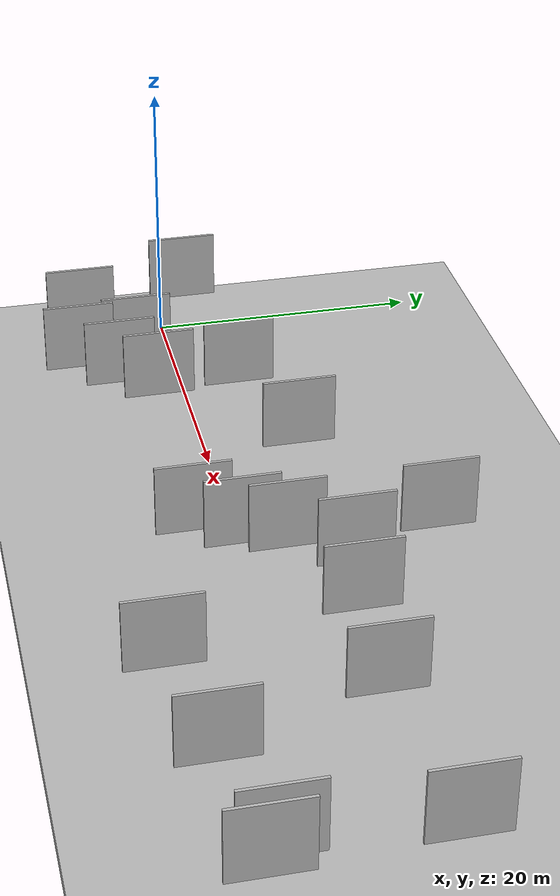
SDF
<?xml version="1.0" encoding="utf-8"?>

<sdf version="1.6">

   <world name="default">

      <gui fullscreen="0">

         <camera name="user_camera">

            <pose>-15 0 4.57585 0 0 0</pose>

            <view_controller>orbit</view_controller>

         </camera>

      </gui>

      <scene>

         <sky>

           <clouds>

             <speed>12</speed>

           </clouds>

         </sky>

         <ambient>0.4 0.4 0.4 1</ambient>

         <background>0.7 0.7 0.7 1</background>

         <shadows>1</shadows>

      </scene>

      <gravity>0 0 -9.8066</gravity>

      <magnetic_field>6e-06 2.3e-05 -4.2e-05</magnetic_field>

      <physics default="0" name="default_physics" type="ode">

         <ode>

            <solver>

               <type>quick</type>

               <iters>10</iters>

               <sor>1.0</sor>

               <use_dynamic_moi_rescaling>0</use_dynamic_moi_rescaling>

            </solver>

            <constraints>

               <cfm>0</cfm>

               <erp>0.2</erp>

               <contact_max_correcting_vel>100</contact_max_correcting_vel>

               <contact_surface_layer>0.001</contact_surface_layer>

            </constraints>

         </ode>

         <max_step_size>0.004</max_step_size>

         <real_time_factor>1</real_time_factor>

         <real_time_update_rate>250</real_time_update_rate>

      </physics>

      <light name="sun" type="directional">

         <cast_shadows>1</cast_shadows>

         <pose>0 0 10 0 0 0</pose>

         <diffuse>0.8 0.8 0.8 1</diffuse>

         <specular>0.2 0.2 0.2 1</specular>

         <attenuation>

            <range>1000</range>

            <constant>0.9</constant>

            <linear>0.01</linear>

            <quadratic>0.001</quadratic>

         </attenuation>

         <direction>-0.5 0.1 -0.9</direction>

      </light>

      <include>

         <name>ground_plane_1</name>

         <uri>model://HANNAS_ground_plane</uri>

         <pose>0 0 0  0 0 0</pose>

      </include>

      <include>

         <name>ground_plane_2</name>

         <uri>model://HANNAS_ground_plane</uri>

         <pose>100 0 0  0 0 0</pose>

      </include>

      <model name="HANNAS_wall_1">

         <static>1</static>

         <pose frame="">45.1255 4.6349 5.0 0.000000 0.000000 1.570796</pose>

         <link name="link">

            <pose frame="">0 0 2.50 0 0 0</pose>

            <collision name="collision">

               <geometry>

                  <box>

                     <size>5.00 0.2 5.00</size>

                  </box>

               </geometry>

               <max_contacts>10</max_contacts>

               <surface>

                  <contact>

                     <ode/>

                  </contact>

                  <bounce/>

                  <friction>

                     <torsional>

                        <ode/>

                     </torsional>

                     <ode/>

                  </friction>

               </surface>

            </collision>

            <visual name="visual">

               <cast_shadows>0</cast_shadows>

               <geometry>

                  <box>

                     <size>5.00 0.2 5.00</size>

                  </box>

               </geometry>

               <material>

                  <script>

                     <uri>model://HANNAS_wall/materials/scripts</uri>

                     <uri>model://HANNAS_wall/materials/textures</uri>

                     <name>vrc/HANNAS_wall</name>

                  </script>

               </material>

            </visual>

            <self_collide>0</self_collide>

            <enable_wind>0</enable_wind>

            <kinematic>0</kinematic>

         </link>

      </model>

      <model name="HANNAS_wall_2">

         <static>1</static>

         <pose frame="">26.2473 5.0978 5.0 0.000000 0.000000 1.570796</pose>

         <link name="link">

            <pose frame="">0 0 2.50 0 0 0</pose>

            <collision name="collision">

               <geometry>

                  <box>

                     <size>5.00 0.2 5.00</size>

                  </box>

               </geometry>

               <max_contacts>10</max_contacts>

               <surface>

                  <contact>

                     <ode/>

                  </contact>

                  <bounce/>

                  <friction>

                     <torsional>

                        <ode/>

                     </torsional>

                     <ode/>

                  </friction>

               </surface>

            </collision>

            <visual name="visual">

               <cast_shadows>0</cast_shadows>

               <geometry>

                  <box>

                     <size>5.00 0.2 5.00</size>

                  </box>

               </geometry>

               <material>

                  <script>

                     <uri>model://HANNAS_wall/materials/scripts</uri>

                     <uri>model://HANNAS_wall/materials/textures</uri>

                     <name>vrc/HANNAS_wall</name>

                  </script>

               </material>

            </visual>

            <self_collide>0</self_collide>

            <enable_wind>0</enable_wind>

            <kinematic>0</kinematic>

         </link>

      </model>

      <model name="HANNAS_wall_3">

         <static>1</static>

         <pose frame="">17.4704 2.7436 5.0 0.000000 0.000000 1.570796</pose>

         <link name="link">

            <pose frame="">0 0 2.50 0 0 0</pose>

            <collision name="collision">

               <geometry>

                  <box>

                     <size>5.00 0.2 5.00</size>

                  </box>

               </geometry>

               <max_contacts>10</max_contacts>

               <surface>

                  <contact>

                     <ode/>

                  </contact>

                  <bounce/>

                  <friction>

                     <torsional>

                        <ode/>

                     </torsional>

                     <ode/>

                  </friction>

               </surface>

            </collision>

            <visual name="visual">

               <cast_shadows>0</cast_shadows>

               <geometry>

                  <box>

                     <size>5.00 0.2 5.00</size>

                  </box>

               </geometry>

               <material>

                  <script>

                     <uri>model://HANNAS_wall/materials/scripts</uri>

                     <uri>model://HANNAS_wall/materials/textures</uri>

                     <name>vrc/HANNAS_wall</name>

                  </script>

               </material>

            </visual>

            <self_collide>0</self_collide>

            <enable_wind>0</enable_wind>

            <kinematic>0</kinematic>

         </link>

      </model>

      <model name="HANNAS_wall_4">

         <static>1</static>

         <pose frame="">34.8560 -3.8197 5.0 0.000000 0.000000 1.570796</pose>

         <link name="link">

            <pose frame="">0 0 2.50 0 0 0</pose>

            <collision name="collision">

               <geometry>

                  <box>

                     <size>5.00 0.2 5.00</size>

                  </box>

               </geometry>

               <max_contacts>10</max_contacts>

               <surface>

                  <contact>

                     <ode/>

                  </contact>

                  <bounce/>

                  <friction>

                     <torsional>

                        <ode/>

                     </torsional>

                     <ode/>

                  </friction>

               </surface>

            </collision>

            <visual name="visual">

               <cast_shadows>0</cast_shadows>

               <geometry>

                  <box>

                     <size>5.00 0.2 5.00</size>

                  </box>

               </geometry>

               <material>

                  <script>

                     <uri>model://HANNAS_wall/materials/scripts</uri>

                     <uri>model://HANNAS_wall/materials/textures</uri>

                     <name>vrc/HANNAS_wall</name>

                  </script>

               </material>

            </visual>

            <self_collide>0</self_collide>

            <enable_wind>0</enable_wind>

            <kinematic>0</kinematic>

         </link>

      </model>

      <model name="HANNAS_wall_5">

         <static>1</static>

         <pose frame="">52.9062 4.0722 5.0 0.000000 0.000000 1.570796</pose>

         <link name="link">

            <pose frame="">0 0 2.50 0 0 0</pose>

            <collision name="collision">

               <geometry>

                  <box>

                     <size>5.00 0.2 5.00</size>

                  </box>

               </geometry>

               <max_contacts>10</max_contacts>

               <surface>

                  <contact>

                     <ode/>

                  </contact>

                  <bounce/>

                  <friction>

                     <torsional>

                        <ode/>

                     </torsional>

                     <ode/>

                  </friction>

               </surface>

            </collision>

            <visual name="visual">

               <cast_shadows>0</cast_shadows>

               <geometry>

                  <box>

                     <size>5.00 0.2 5.00</size>

                  </box>

               </geometry>

               <material>

                  <script>

                     <uri>model://HANNAS_wall/materials/scripts</uri>

                     <uri>model://HANNAS_wall/materials/textures</uri>

                     <name>vrc/HANNAS_wall</name>

                  </script>

               </material>

            </visual>

            <self_collide>0</self_collide>

            <enable_wind>0</enable_wind>

            <kinematic>0</kinematic>

         </link>

      </model>

      <model name="HANNAS_wall_6">

         <static>1</static>

         <pose frame="">40.3292 5.4675 5.0 0.000000 0.000000 1.570796</pose>

         <link name="link">

            <pose frame="">0 0 2.50 0 0 0</pose>

            <collision name="collision">

               <geometry>

                  <box>

                     <size>5.00 0.2 5.00</size>

                  </box>

               </geometry>

               <max_contacts>10</max_contacts>

               <surface>

                  <contact>

                     <ode/>

                  </contact>

                  <bounce/>

                  <friction>

                     <torsional>

                        <ode/>

                     </torsional>

                     <ode/>

                  </friction>

               </surface>

            </collision>

            <visual name="visual">

               <cast_shadows>0</cast_shadows>

               <geometry>

                  <box>

                     <size>5.00 0.2 5.00</size>

                  </box>

               </geometry>

               <material>

                  <script>

                     <uri>model://HANNAS_wall/materials/scripts</uri>

                     <uri>model://HANNAS_wall/materials/textures</uri>

                     <name>vrc/HANNAS_wall</name>

                  </script>

               </material>

            </visual>

            <self_collide>0</self_collide>

            <enable_wind>0</enable_wind>

            <kinematic>0</kinematic>

         </link>

      </model>

      <model name="HANNAS_wall_7">

         <static>1</static>

         <pose frame="">65.6613 -5.6756 5.0 0.000000 0.000000 1.570796</pose>

         <link name="link">

            <pose frame="">0 0 2.50 0 0 0</pose>

            <collision name="collision">

               <geometry>

                  <box>

                     <size>5.00 0.2 5.00</size>

                  </box>

               </geometry>

               <max_contacts>10</max_contacts>

               <surface>

                  <contact>

                     <ode/>

                  </contact>

                  <bounce/>

                  <friction>

                     <torsional>

                        <ode/>

                     </torsional>

                     <ode/>

                  </friction>

               </surface>

            </collision>

            <visual name="visual">

               <cast_shadows>0</cast_shadows>

               <geometry>

                  <box>

                     <size>5.00 0.2 5.00</size>

                  </box>

               </geometry>

               <material>

                  <script>

                     <uri>model://HANNAS_wall/materials/scripts</uri>

                     <uri>model://HANNAS_wall/materials/textures</uri>

                     <name>vrc/HANNAS_wall</name>

                  </script>

               </material>

            </visual>

            <self_collide>0</self_collide>

            <enable_wind>0</enable_wind>

            <kinematic>0</kinematic>

         </link>

      </model>

      <model name="HANNAS_wall_8">

         <static>1</static>

         <pose frame="">15.6821 -5.5111 5.0 0.000000 0.000000 1.570796</pose>

         <link name="link">

            <pose frame="">0 0 2.50 0 0 0</pose>

            <collision name="collision">

               <geometry>

                  <box>

                     <size>5.00 0.2 5.00</size>

                  </box>

               </geometry>

               <max_contacts>10</max_contacts>

               <surface>

                  <contact>

                     <ode/>

                  </contact>

                  <bounce/>

                  <friction>

                     <torsional>

                        <ode/>

                     </torsional>

                     <ode/>

                  </friction>

               </surface>

            </collision>

            <visual name="visual">

               <cast_shadows>0</cast_shadows>

               <geometry>

                  <box>

                     <size>5.00 0.2 5.00</size>

                  </box>

               </geometry>

               <material>

                  <script>

                     <uri>model://HANNAS_wall/materials/scripts</uri>

                     <uri>model://HANNAS_wall/materials/textures</uri>

                     <name>vrc/HANNAS_wall</name>

                  </script>

               </material>

            </visual>

            <self_collide>0</self_collide>

            <enable_wind>0</enable_wind>

            <kinematic>0</kinematic>

         </link>

      </model>

      <model name="HANNAS_wall_9">

         <static>1</static>

         <pose frame="">12.9343 -8.0553 5.0 0.000000 0.000000 1.570796</pose>

         <link name="link">

            <pose frame="">0 0 2.50 0 0 0</pose>

            <collision name="collision">

               <geometry>

                  <box>

                     <size>5.00 0.2 5.00</size>

                  </box>

               </geometry>

               <max_contacts>10</max_contacts>

               <surface>

                  <contact>

                     <ode/>

                  </contact>

                  <bounce/>

                  <friction>

                     <torsional>

                        <ode/>

                     </torsional>

                     <ode/>

                  </friction>

               </surface>

            </collision>

            <visual name="visual">

               <cast_shadows>0</cast_shadows>

               <geometry>

                  <box>

                     <size>5.00 0.2 5.00</size>

                  </box>

               </geometry>

               <material>

                  <script>

                     <uri>model://HANNAS_wall/materials/scripts</uri>

                     <uri>model://HANNAS_wall/materials/textures</uri>

                     <name>vrc/HANNAS_wall</name>

                  </script>

               </material>

            </visual>

            <self_collide>0</self_collide>

            <enable_wind>0</enable_wind>

            <kinematic>0</kinematic>

         </link>

      </model>

      <model name="HANNAS_wall_10">

         <static>1</static>

         <pose frame="">56.5571 -6.5702 5.0 0.000000 0.000000 1.570796</pose>

         <link name="link">

            <pose frame="">0 0 2.50 0 0 0</pose>

            <collision name="collision">

               <geometry>

                  <box>

                     <size>5.00 0.2 5.00</size>

                  </box>

               </geometry>

               <max_contacts>10</max_contacts>

               <surface>

                  <contact>

                     <ode/>

                  </contact>

                  <bounce/>

                  <friction>

                     <torsional>

                        <ode/>

                     </torsional>

                     <ode/>

                  </friction>

               </surface>

            </collision>

            <visual name="visual">

               <cast_shadows>0</cast_shadows>

               <geometry>

                  <box>

                     <size>5.00 0.2 5.00</size>

                  </box>

               </geometry>

               <material>

                  <script>

                     <uri>model://HANNAS_wall/materials/scripts</uri>

                     <uri>model://HANNAS_wall/materials/textures</uri>

                     <name>vrc/HANNAS_wall</name>

                  </script>

               </material>

            </visual>

            <self_collide>0</self_collide>

            <enable_wind>0</enable_wind>

            <kinematic>0</kinematic>

         </link>

      </model>

      <model name="HANNAS_wall_11">

         <static>1</static>

         <pose frame="">7.4788 -7.1962 5.0 0.000000 0.000000 1.570796</pose>

         <link name="link">

            <pose frame="">0 0 2.50 0 0 0</pose>

            <collision name="collision">

               <geometry>

                  <box>

                     <size>5.00 0.2 5.00</size>

                  </box>

               </geometry>

               <max_contacts>10</max_contacts>

               <surface>

                  <contact>

                     <ode/>

                  </contact>

                  <bounce/>

                  <friction>

                     <torsional>

                        <ode/>

                     </torsional>

                     <ode/>

                  </friction>

               </surface>

            </collision>

            <visual name="visual">

               <cast_shadows>0</cast_shadows>

               <geometry>

                  <box>

                     <size>5.00 0.2 5.00</size>

                  </box>

               </geometry>

               <material>

                  <script>

                     <uri>model://HANNAS_wall/materials/scripts</uri>

                     <uri>model://HANNAS_wall/materials/textures</uri>

                     <name>vrc/HANNAS_wall</name>

                  </script>

               </material>

            </visual>

            <self_collide>0</self_collide>

            <enable_wind>0</enable_wind>

            <kinematic>0</kinematic>

         </link>

      </model>

      <model name="HANNAS_wall_12">

         <static>1</static>

         <pose frame="">64.4495 -4.7952 5.0 0.000000 0.000000 1.570796</pose>

         <link name="link">

            <pose frame="">0 0 2.50 0 0 0</pose>

            <collision name="collision">

               <geometry>

                  <box>

                     <size>5.00 0.2 5.00</size>

                  </box>

               </geometry>

               <max_contacts>10</max_contacts>

               <surface>

                  <contact>

                     <ode/>

                  </contact>

                  <bounce/>

                  <friction>

                     <torsional>

                        <ode/>

                     </torsional>

                     <ode/>

                  </friction>

               </surface>

            </collision>

            <visual name="visual">

               <cast_shadows>0</cast_shadows>

               <geometry>

                  <box>

                     <size>5.00 0.2 5.00</size>

                  </box>

               </geometry>

               <material>

                  <script>

                     <uri>model://HANNAS_wall/materials/scripts</uri>

                     <uri>model://HANNAS_wall/materials/textures</uri>

                     <name>vrc/HANNAS_wall</name>

                  </script>

               </material>

            </visual>

            <self_collide>0</self_collide>

            <enable_wind>0</enable_wind>

            <kinematic>0</kinematic>

         </link>

      </model>

      <model name="HANNAS_wall_13">

         <static>1</static>

         <pose frame="">37.8097 11.5834 5.0 0.000000 0.000000 1.570796</pose>

         <link name="link">

            <pose frame="">0 0 2.50 0 0 0</pose>

            <collision name="collision">

               <geometry>

                  <box>

                     <size>5.00 0.2 5.00</size>

                  </box>

               </geometry>

               <max_contacts>10</max_contacts>

               <surface>

                  <contact>

                     <ode/>

                  </contact>

                  <bounce/>

                  <friction>

                     <torsional>

                        <ode/>

                     </torsional>

                     <ode/>

                  </friction>

               </surface>

            </collision>

            <visual name="visual">

               <cast_shadows>0</cast_shadows>

               <geometry>

                  <box>

                     <size>5.00 0.2 5.00</size>

                  </box>

               </geometry>

               <material>

                  <script>

                     <uri>model://HANNAS_wall/materials/scripts</uri>

                     <uri>model://HANNAS_wall/materials/textures</uri>

                     <name>vrc/HANNAS_wall</name>

                  </script>

               </material>

            </visual>

            <self_collide>0</self_collide>

            <enable_wind>0</enable_wind>

            <kinematic>0</kinematic>

         </link>

      </model>

      <model name="HANNAS_wall_14">

         <static>1</static>

         <pose frame="">37.9137 1.6221 5.0 0.000000 0.000000 1.570796</pose>

         <link name="link">

            <pose frame="">0 0 2.50 0 0 0</pose>

            <collision name="collision">

               <geometry>

                  <box>

                     <size>5.00 0.2 5.00</size>

                  </box>

               </geometry>

               <max_contacts>10</max_contacts>

               <surface>

                  <contact>

                     <ode/>

                  </contact>

                  <bounce/>

                  <friction>

                     <torsional>

                        <ode/>

                     </torsional>

                     <ode/>

                  </friction>

               </surface>

            </collision>

            <visual name="visual">

               <cast_shadows>0</cast_shadows>

               <geometry>

                  <box>

                     <size>5.00 0.2 5.00</size>

                  </box>

               </geometry>

               <material>

                  <script>

                     <uri>model://HANNAS_wall/materials/scripts</uri>

                     <uri>model://HANNAS_wall/materials/textures</uri>

                     <name>vrc/HANNAS_wall</name>

                  </script>

               </material>

            </visual>

            <self_collide>0</self_collide>

            <enable_wind>0</enable_wind>

            <kinematic>0</kinematic>

         </link>

      </model>

      <model name="HANNAS_wall_15">

         <static>1</static>

         <pose frame="">17.9428 -3.1046 5.0 0.000000 0.000000 1.570796</pose>

         <link name="link">

            <pose frame="">0 0 2.50 0 0 0</pose>

            <collision name="collision">

               <geometry>

                  <box>

                     <size>5.00 0.2 5.00</size>

                  </box>

               </geometry>

               <max_contacts>10</max_contacts>

               <surface>

                  <contact>

                     <ode/>

                  </contact>

                  <bounce/>

                  <friction>

                     <torsional>

                        <ode/>

                     </torsional>

                     <ode/>

                  </friction>

               </surface>

            </collision>

            <visual name="visual">

               <cast_shadows>0</cast_shadows>

               <geometry>

                  <box>

                     <size>5.00 0.2 5.00</size>

                  </box>

               </geometry>

               <material>

                  <script>

                     <uri>model://HANNAS_wall/materials/scripts</uri>

                     <uri>model://HANNAS_wall/materials/textures</uri>

                     <name>vrc/HANNAS_wall</name>

                  </script>

               </material>

            </visual>

            <self_collide>0</self_collide>

            <enable_wind>0</enable_wind>

            <kinematic>0</kinematic>

         </link>

      </model>

      <model name="HANNAS_wall_16">

         <static>1</static>

         <pose frame="">36.8913 -1.0545 5.0 0.000000 0.000000 1.570796</pose>

         <link name="link">

            <pose frame="">0 0 2.50 0 0 0</pose>

            <collision name="collision">

               <geometry>

                  <box>

                     <size>5.00 0.2 5.00</size>

                  </box>

               </geometry>

               <max_contacts>10</max_contacts>

               <surface>

                  <contact>

                     <ode/>

                  </contact>

                  <bounce/>

                  <friction>

                     <torsional>

                        <ode/>

                     </torsional>

                     <ode/>

                  </friction>

               </surface>

            </collision>

            <visual name="visual">

               <cast_shadows>0</cast_shadows>

               <geometry>

                  <box>

                     <size>5.00 0.2 5.00</size>

                  </box>

               </geometry>

               <material>

                  <script>

                     <uri>model://HANNAS_wall/materials/scripts</uri>

                     <uri>model://HANNAS_wall/materials/textures</uri>

                     <name>vrc/HANNAS_wall</name>

                  </script>

               </material>

            </visual>

            <self_collide>0</self_collide>

            <enable_wind>0</enable_wind>

            <kinematic>0</kinematic>

         </link>

      </model>

      <model name="HANNAS_wall_17">

         <static>1</static>

         <pose frame="">65.1112 5.1265 5.0 0.000000 0.000000 1.570796</pose>

         <link name="link">

            <pose frame="">0 0 2.50 0 0 0</pose>

            <collision name="collision">

               <geometry>

                  <box>

                     <size>5.00 0.2 5.00</size>

                  </box>

               </geometry>

               <max_contacts>10</max_contacts>

               <surface>

                  <contact>

                     <ode/>

                  </contact>

                  <bounce/>

                  <friction>

                     <torsional>

                        <ode/>

                     </torsional>

                     <ode/>

                  </friction>

               </surface>

            </collision>

            <visual name="visual">

               <cast_shadows>0</cast_shadows>

               <geometry>

                  <box>

                     <size>5.00 0.2 5.00</size>

                  </box>

               </geometry>

               <material>

                  <script>

                     <uri>model://HANNAS_wall/materials/scripts</uri>

                     <uri>model://HANNAS_wall/materials/textures</uri>

                     <name>vrc/HANNAS_wall</name>

                  </script>

               </material>

            </visual>

            <self_collide>0</self_collide>

            <enable_wind>0</enable_wind>

            <kinematic>0</kinematic>

         </link>

      </model>

      <model name="HANNAS_wall_18">

         <static>1</static>

         <pose frame="">47.9540 -8.0526 5.0 0.000000 0.000000 1.570796</pose>

         <link name="link">

            <pose frame="">0 0 2.50 0 0 0</pose>

            <collision name="collision">

               <geometry>

                  <box>

                     <size>5.00 0.2 5.00</size>

                  </box>

               </geometry>

               <max_contacts>10</max_contacts>

               <surface>

                  <contact>

                     <ode/>

                  </contact>

                  <bounce/>

                  <friction>

                     <torsional>

                        <ode/>

                     </torsional>

                     <ode/>

                  </friction>

               </surface>

            </collision>

            <visual name="visual">

               <cast_shadows>0</cast_shadows>

               <geometry>

                  <box>

                     <size>5.00 0.2 5.00</size>

                  </box>

               </geometry>

               <material>

                  <script>

                     <uri>model://HANNAS_wall/materials/scripts</uri>

                     <uri>model://HANNAS_wall/materials/textures</uri>

                     <name>vrc/HANNAS_wall</name>

                  </script>

               </material>

            </visual>

            <self_collide>0</self_collide>

            <enable_wind>0</enable_wind>

            <kinematic>0</kinematic>

         </link>

      </model>

      <model name="HANNAS_wall_19">

         <static>1</static>

         <pose frame="">12.4685 -3.8119 5.0 0.000000 0.000000 1.570796</pose>

         <link name="link">

            <pose frame="">0 0 2.50 0 0 0</pose>

            <collision name="collision">

               <geometry>

                  <box>

                     <size>5.00 0.2 5.00</size>

                  </box>

               </geometry>

               <max_contacts>10</max_contacts>

               <surface>

                  <contact>

                     <ode/>

                  </contact>

                  <bounce/>

                  <friction>

                     <torsional>

                        <ode/>

                     </torsional>

                     <ode/>

                  </friction>

               </surface>

            </collision>

            <visual name="visual">

               <cast_shadows>0</cast_shadows>

               <geometry>

                  <box>

                     <size>5.00 0.2 5.00</size>

                  </box>

               </geometry>

               <material>

                  <script>

                     <uri>model://HANNAS_wall/materials/scripts</uri>

                     <uri>model://HANNAS_wall/materials/textures</uri>

                     <name>vrc/HANNAS_wall</name>

                  </script>

               </material>

            </visual>

            <self_collide>0</self_collide>

            <enable_wind>0</enable_wind>

            <kinematic>0</kinematic>

         </link>

      </model>

      <model name="HANNAS_wall_20">

         <static>1</static>

         <pose frame="">3.9711 1.0823 5.0 0.000000 0.000000 1.570796</pose>

         <link name="link">

            <pose frame="">0 0 2.50 0 0 0</pose>

            <collision name="collision">

               <geometry>

                  <box>

                     <size>5.00 0.2 5.00</size>

                  </box>

               </geometry>

               <max_contacts>10</max_contacts>

               <surface>

                  <contact>

                     <ode/>

                  </contact>

                  <bounce/>

                  <friction>

                     <torsional>

                        <ode/>

                     </torsional>

                     <ode/>

                  </friction>

               </surface>

            </collision>

            <visual name="visual">

               <cast_shadows>0</cast_shadows>

               <geometry>

                  <box>

                     <size>5.00 0.2 5.00</size>

                  </box>

               </geometry>

               <material>

                  <script>

                     <uri>model://HANNAS_wall/materials/scripts</uri>

                     <uri>model://HANNAS_wall/materials/textures</uri>

                     <name>vrc/HANNAS_wall</name>

                  </script>

               </material>

            </visual>

            <self_collide>0</self_collide>

            <enable_wind>0</enable_wind>

            <kinematic>0</kinematic>

         </link>

      </model>

   </world>

</sdf>

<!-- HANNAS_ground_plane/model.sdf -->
<sdf version="1.4">
<model name="HANNAS_ground_plane">
  <static>true</static>
    <link name="link">
      <collision name="collision">
        <geometry>
          <plane>
            <normal>0 0 1</normal>
            <size>1000 1000</size>
          </plane>
        </geometry>
        <surface>
          <friction>
            <ode>
              <mu>100</mu>
              <mu2>50</mu2>
            </ode>
          </friction>
        </surface>
      </collision>
      <visual name="visual">
        <cast_shadows>false</cast_shadows>
        <geometry>
          <plane>
            <normal>0 0 1</normal>
            <size>1000 1000</size>
          </plane>
        </geometry>
        <material>
          <script>
            <uri>model://HANNAS_ground_plane/materials/scripts/HANNAS_ground_plane.material</uri>
	    <uri>model://HANNAS_ground_plane/materials/textures</uri>
            <name>HANNASGroundPlane/Image</name>
          </script>
        </material>
      </visual>
    </link>
  </model>
</sdf>
